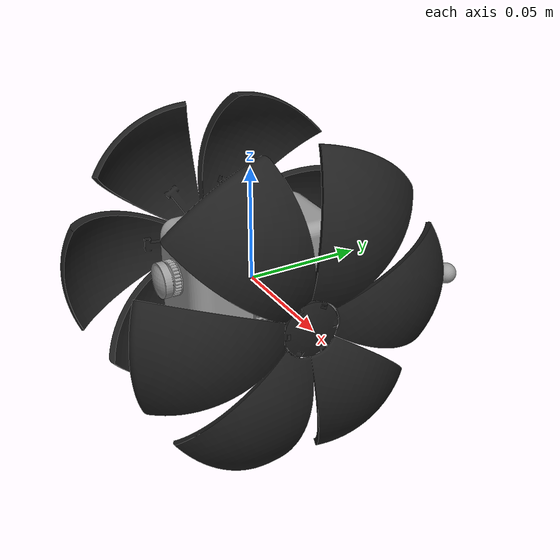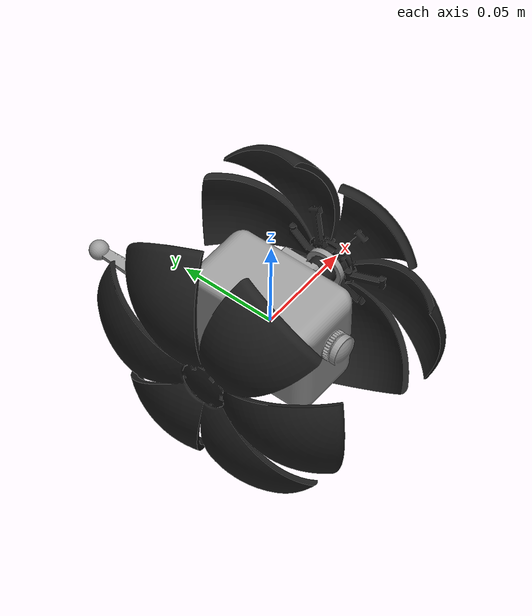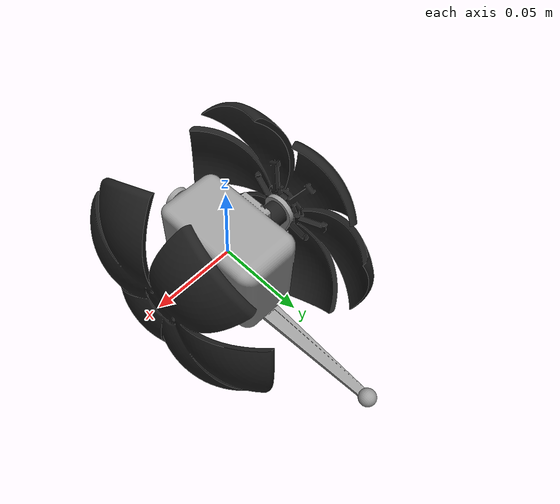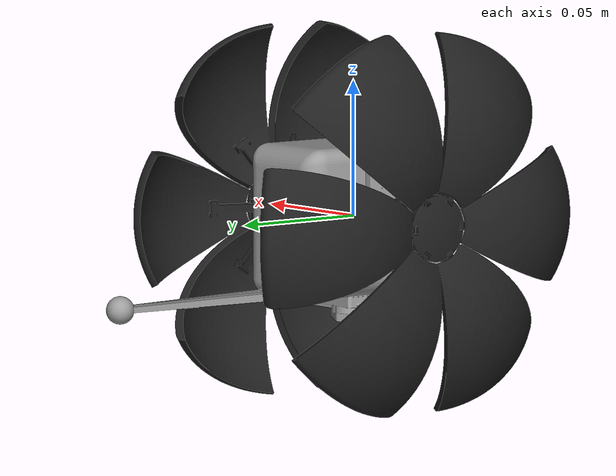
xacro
<?xml version="1.0" ?>
<robot name="ball_bot" xmlns:xacro="http://ros.org/wiki/xacro">
  <xacro:include filename="$(find Ball_bot)/urdf/common_properties.xacro"/>
  <xacro:include filename="$(find Ball_bot)/urdf/ball_bot.gazebo.xacro"/>

  <link name="base_footprint"/>

  <joint name="base_joint" type="fixed">
    <parent link="base_footprint"/>
    <child link="base_link" />
    <origin xyz="0 0 0" rpy="0 0 0"/>
  </joint>

  <link name="base_link">
    <visual>
      <origin xyz="0 0.11 -0.0055" rpy="1.57 0 0"/>
      <geometry>
        <mesh filename="package://Ball_bot/meshes/base.stl" scale="0.001 0.001 0.001"/>
      </geometry>
      <material name="grey"/>
    </visual>

    <collision>
      <origin xyz="0 0.11 -0.0055" rpy="1.57 0 0"/>
      <geometry>
        <mesh filename="package://Ball_bot/meshes/base.stl" scale="0.001 0.001 0.001"/>
      </geometry>
    </collision>

    <inertial>
      <origin xyz="0.0 0.05 -0.04" rpy="0 0 0"/>
      <mass value="0.8"/>
      <inertia ixx="8.7002718e-03" ixy="-4.7576583e-05" ixz="1.1160499e-04"
               iyy="8.6195418e-03" iyz="-3.5422299e-06"
               izz="1.4612727e-02" />
    </inertial>
  </link>

  <joint name="wheel_left_joint" type="continuous">
    <parent link="base_link"/>
    <child link="wheel_left_link"/>
    <origin xyz="-0.025706 0 0" rpy="0 0 0"/>
    <axis xyz="1 0 0"/>
  </joint>

  <link name="wheel_left_link">
    <visual>
      <origin xyz="-0.014775 0 -0.069411" rpy="0 0 0"/>
      <geometry>
        <mesh filename="package://Ball_bot/meshes/wheel.stl" scale="0.001 0.001 0.001"/>
      </geometry>
      <material name="dark"/>
    </visual>

    <collision>
      <origin xyz="-0.014775 0 -0.069411" rpy="0 0 0"/>
      <geometry>
        <mesh filename="package://Ball_bot/meshes/wheel.stl" scale="0.001 0.001 0.001"/>
      </geometry>
    </collision>

    <inertial>
      <origin xyz="0 0 0" />
      <mass value="2.8498940e-02" />
      <inertia ixx="1.1175580e-05" ixy="-4.2369783e-11" ixz="-5.9381719e-09"
               iyy="1.1192413e-05" iyz="-1.4400107e-11"
               izz="2.0712558e-05" />
      </inertial>
  </link>

  <joint name="wheel_right_joint" type="continuous">
    <parent link="base_link"/>
    <child link="wheel_right_link"/>
    <origin xyz="0.025706 0 0" rpy="0 0 3.14"/>
    <axis xyz="-1 0 0"/>
  </joint>

  <link name="wheel_right_link">
    <visual>
      <origin xyz="-0.014775 0 -0.069411" rpy="0 0 0"/>
      <geometry>
        <mesh filename="package://Ball_bot/meshes/wheel.stl" scale="0.001 0.001 0.001"/>
      </geometry>
      <material name="dark"/>
    </visual>

    <collision>
      <origin xyz="-0.014775 0 -0.069411" rpy="0 0 0"/>
      <geometry>
        <mesh filename="package://Ball_bot/meshes/wheel.stl" scale="0.001 0.001 0.001"/>
      </geometry>
    </collision>

    <inertial>
      <origin xyz="0 0 0" />
      <mass value="2.8498940e-02" />
      <inertia ixx="1.1175580e-05" ixy="-4.2369783e-11" ixz="-5.9381719e-09"
               iyy="1.1192413e-05" iyz="-1.4400107e-11"
               izz="2.0712558e-05" />
      </inertial>
  </link> -->

  <joint name="camera_joint" type="fixed">
    <origin xyz="0.073 -0.011 0.107" rpy="0 0 -1.57"/>
    <parent link="base_link"/>
    <child link="camera_link"/>
  </joint>

  <link name="camera_link">
    <collision>
      <origin xyz="0.005 0.011 0.013" rpy="0 0 0"/>
      <geometry>
        <box size="0.015 0.030 0.027"/>
      </geometry>
    </collision>
  </link>

  <joint name="camera_rgb_joint" type="fixed">
    <origin xyz="0.003 0.011 0.009" rpy="0 0 0"/>
    <parent link="camera_link"/>
    <child link="camera_rgb_frame"/>
  </joint>

  <link name="camera_rgb_frame">
  </link>

  <joint name="camera_rgb_optical_joint" type="fixed">
    <origin xyz="0 0 0" rpy="0 0 0"/>
    <parent link="camera_rgb_frame"/>
    <child link="camera_rgb_optical_frame"/>
  </joint>
  <link name="camera_rgb_optical_frame"/>

</robot>
